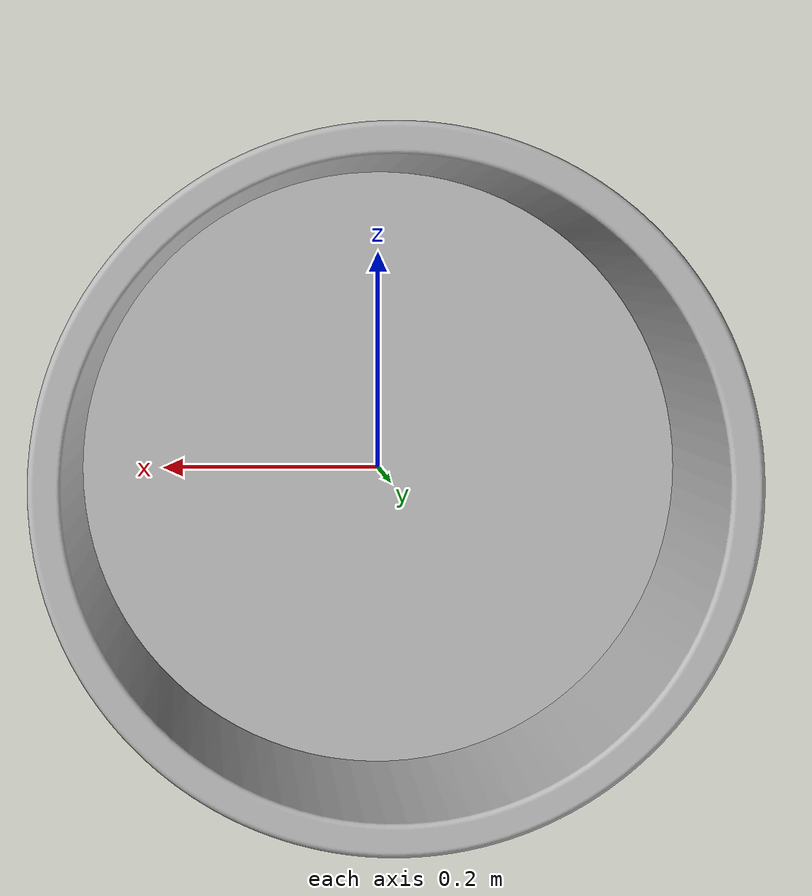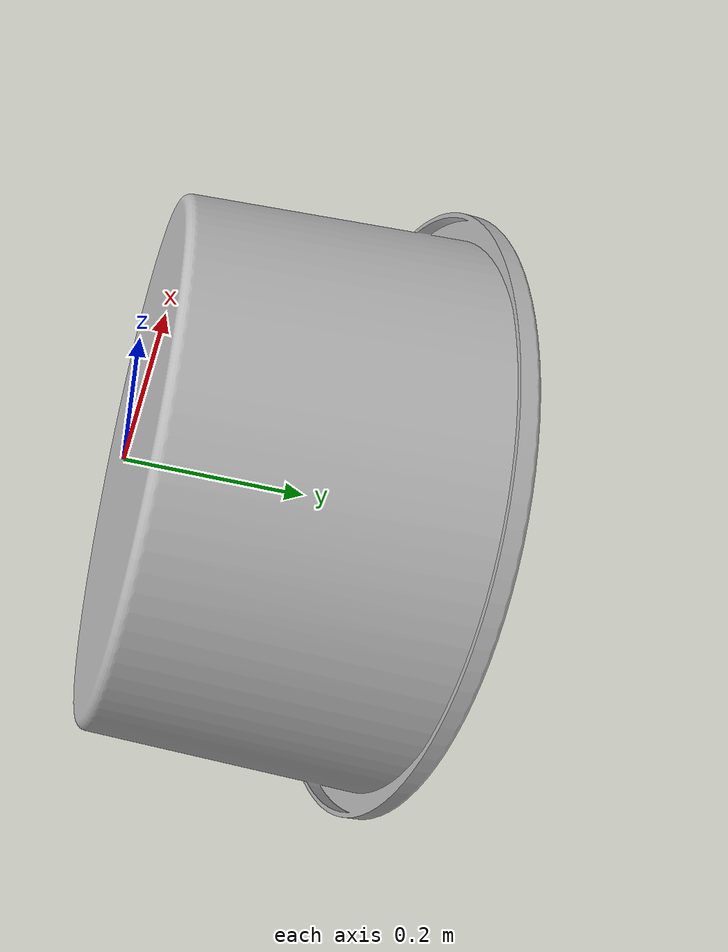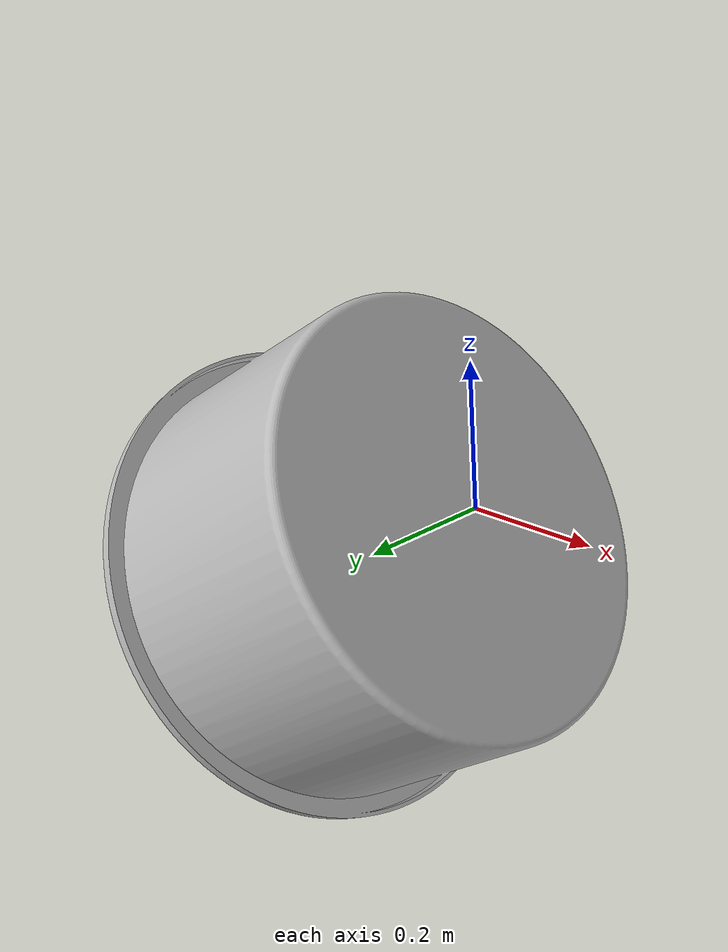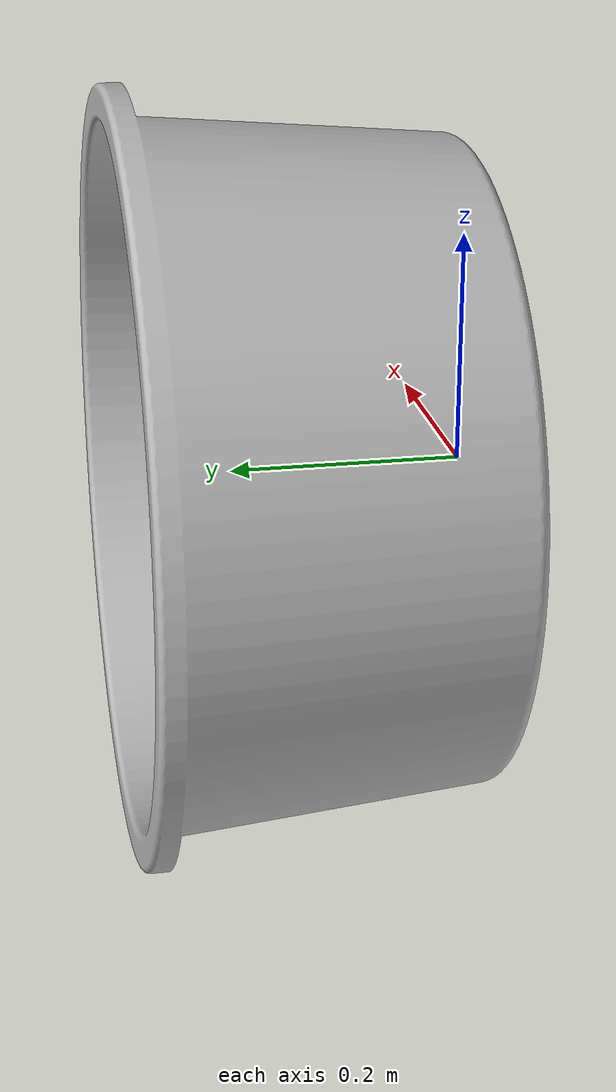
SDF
<?xml version="1.0"?>
<sdf version="1.5">
    <model name="sauvc2022_drumblue">
        <static>false</static>
        <link name="link">
            <collision name="collision">
                <geometry>
                    <mesh>
                        <uri>model://sauvc2022_drumblue/meshes/Drum_Blue.obj</uri>
                    </mesh>
                </geometry>
                <surface>
                    <friction>
                        <ode>
                            <mu>100</mu>
                            <mu2>50</mu2>
                        </ode>
                    </friction>
                </surface>
            </collision>
            <visual name="visual">
                <geometry>
                    <mesh>
                        <uri>model://sauvc2022_drumblue/meshes/Drum_Blue.obj</uri>
                    </mesh>
                </geometry>
                <material>
                    <script>
                        <uri>model://sauvc2022_drumblue/meshes/Drum_Blue.mtl</uri>
                        <name>sauvc2022_drumblue/material</name>
                    </script>
                </material>
            </visual>
        </link>
    </model>
</sdf>
